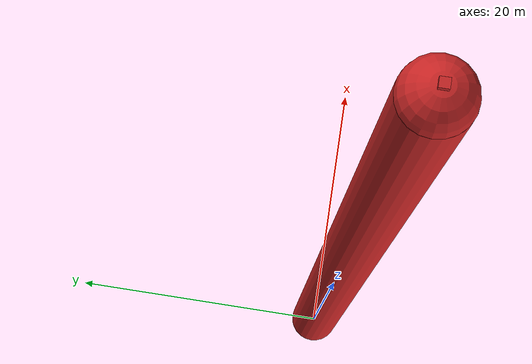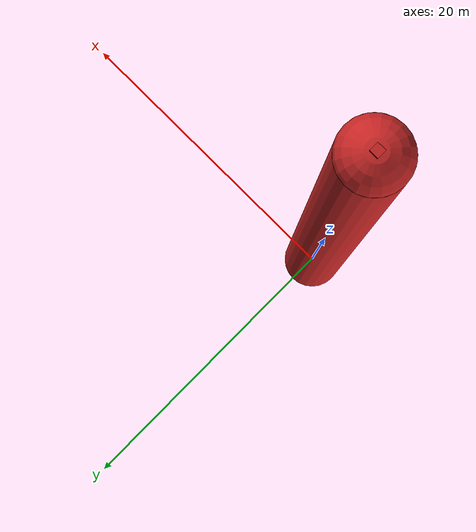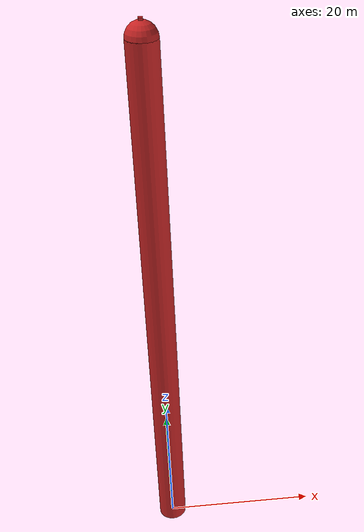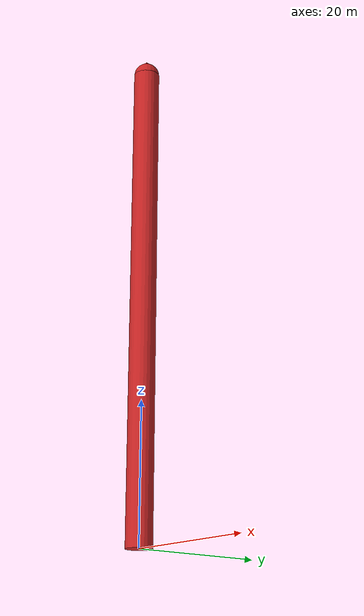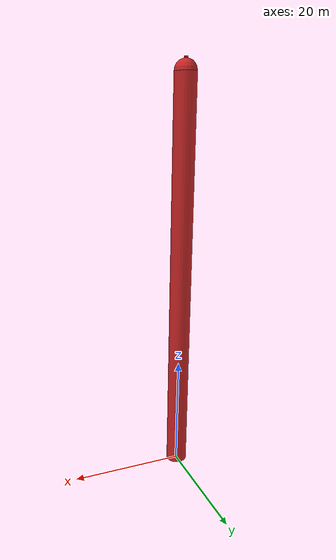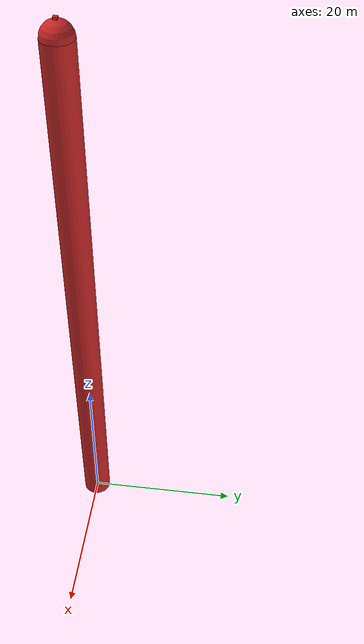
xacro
<?xml version="1.0"?>
<robot name="rocket/rocket">
  <material name="Red">
      <color rgba="0.8 0.0 0.0 1.0"/>
    </material>

  <macro name="cylinder_inertia" params="m r h">
    <inertia  ixx="${m*(3*r*r+h*h)/12}" ixy = "0.00001" ixz = "0.00001"
              iyy="${m*(3*r*r+h*h)/12}" iyz = "0.00001"
              izz="${m*r*r/2}" />
  </macro>

  <macro name="sphere_inertia" params="m r">
    <inertia  ixx="${2*m*r*r/5}" ixy = "0.00001" ixz = "0.00001"
              iyy="${2*m*r*r/5}" iyz = "0.00001"
              izz="${2*m*r*r/5}" />
  </macro>

  <link name="body">
    <inertial>
      <mass value="549054"/>
      <origin xyz="0.00001 0.00001 35"/>
      <cylinder_inertia  m="549054" r="1.85" h="70" />
    </inertial>
    <visual>
      <origin rpy="0 0 0" xyz="0 0 35"/>
      <geometry>
        <cylinder length="70" radius="1.85"/>
      </geometry>
    </visual>
    <collision>
      <origin rpy="0 0 0" xyz="0 0 35"/>
      <geometry>
        <cylinder length="70" radius="1.85"/>
      </geometry>
    </collision>
  </link>

    <gazebo reference="body">
      <material>Gazebo/Red</material>
      <turnGravityOff>false</turnGravityOff>
    </gazebo>

  <link name="s_body">
    <inertial>
      <mass value="4000"/>
      <origin xyz="0.00001 0.00001 70"/>
      <sphere_inertia m = "4000" r = "1.85" />
    </inertial>
    <collision>
      <origin rpy="0 0 0" xyz="0 0 70"/>
      <geometry>
        <sphere radius="1.85"/>
      </geometry>
    </collision>
    <visual>
      <origin rpy="0 0 0" xyz="0 0 70"/>
      <geometry>
        <sphere radius="1.85"/>
      </geometry>
    </visual>
  </link>

  <gazebo reference="s_body">
      <material>Gazebo/Red</material>
      <turnGravityOff>false</turnGravityOff>
    </gazebo>

  <joint name="joint_body_s_body" type="fixed">
    <origin rpy="0 0 0" xyz="0 0 0"/>
    <parent link="body"/>
    <child link="s_body"/>
  </joint>

 <link name="base">
    <inertial>
      <mass value="0.000001"/>
      <origin xyz="0.00001 0.00001 0.00005"/>
      <cylinder_inertia  m="1" r="1.85" h="0.0001" />
    </inertial>
    <visual>
      <origin rpy="0 0 0" xyz="0 0 0.00005"/>
      <geometry>
        <cylinder length="0.0001" radius="1.85"/>
      </geometry>
    </visual>
    <collision>
      <origin rpy="0 0 0" xyz="0 0 0.00005"/>
      <geometry>
        <cylinder length="0.0001" radius="1.85"/>
      </geometry>
    </collision>
  </link>

   <gazebo reference="base">
      <material>Gazebo/Blue</material>
      <turnGravityOff>false</turnGravityOff>
    </gazebo>

  <joint name="joint_body_base" type="fixed">
    <origin rpy="0 0 0" xyz="0 0 0"/>
    <parent link="body"/>
    <child link="base"/>
  </joint>

  <property name="camera_link_size" value="0.5" />
  <property name="PI" value="3.1415926535897931" />

  <link name="camera_adj">
  </link>

  <joint name="camera_optical_joint" type="fixed">
        <origin xyz="0 -35.925 35.925" rpy="0.0 ${-PI/2} ${-PI/2}" />
        <parent link="camera_adj" />
        <child link="camera_link"/>
  </joint>

  <joint name="camera_joint" type="fixed">
    <origin xyz="0 0 35.925" rpy="0 0 0"/>
    <parent link="s_body"/>
    <child link="camera_adj"/>
  </joint>

  <link name="camera_link">
    <collision>
      <origin xyz="0 0 35.925" rpy="0 0 0"/>
      <geometry>
    <box size="${camera_link_size} ${camera_link_size} ${camera_link_size}"/>
      </geometry>
    </collision>

    <visual>
      <origin xyz="0 0 35.925" rpy="0 0 0"/>
      <geometry>
    <box size="${camera_link_size} ${camera_link_size} ${camera_link_size}"/>
      </geometry>
      <material name="red"/>
    </visual>

    <inertial>
      <mass value="1e-5" />
      <origin xyz="0 0 0" rpy="0 0 0"/>
      <inertia ixx="1e-6" ixy="0" ixz="0" iyy="1e-6" iyz="0" izz="1e-6" />
    </inertial>

  </link>

  <gazebo reference="camera_link">
    <material>Gazebo/Blue</material>
    <turnGravityOff>false</turnGravityOff>
  </gazebo>

   <gazebo reference="camera_link">
    <sensor type="camera" name="camera1">
      <update_rate>30.0</update_rate>
      <camera name="camera1">
        <horizontal_fov>1.3962634</horizontal_fov>
        <image>
          <width>800</width>
          <height>800</height>
          <format>R8G8B8</format>
        </image>
        <clip>
          <near>0.02</near>
          <far>300</far>
        </clip>
        <noise>
          <type>gaussian</type>
          <!-- Noise is sampled independently per pixel on each frame.
               That pixel's noise value is added to each of its color
               channels, which at that point lie in the range [0,1]. -->
          <mean>0.0</mean>
          <stddev>0.007</stddev>
        </noise>
      </camera>

      <plugin name="camera_controller" filename="libgazebo_ros_camera.so">
        <alwaysOn>true</alwaysOn>
        <updateRate>10.0</updateRate>
        <cameraName>camera1</cameraName>
        <imageTopicName>image_raw</imageTopicName>
        <cameraInfoTopicName>camera_info</cameraInfoTopicName>
        <frameName>camera_link</frameName>
        <hackBaseline>1.57</hackBaseline>
        <distortionK1>0.0</distortionK1>
        <distortionK2>0.0</distortionK2>
        <distortionK3>0.0</distortionK3>
        <distortionT1>0.0</distortionT1>
        <distortionT2>0.0</distortionT2>
      </plugin>
    </sensor>
  </gazebo>

  <gazebo>
    <plugin name="body_lift" filename="libLiftDragPlugin.so">

      <!-- taken from the lift curve figure -->
      <!-- alpha_0 is 5 degrees -->
      <a0>0.08727</a0>
      <!-- alpha_stall is 19.3 degrees -->
      <alpha_stall>0.3368</alpha_stall>
      <!-- slope of the lift curve to the left of the stall angle -->
      <cla>5.418</cla>
      <!-- slope of the lift curve to the right of the stall angle -->
      <cla_stall>-2.1419</cla_stall>

      <cda>0.0001</cda>
      <cda_stall>0.0001</cda_stall>
      <cma>0.0001</cma>
      <cma_stall>0.0001</cma_stall>
      <area>2.969</area>
      <fluid_density>1.225</fluid_density>
      <forward>1 0.001 0.001</forward>
      <upward>-1 0.001 1</upward>
      <cp>0.001 0.001 1.5</cp>
      <link_name>body</link_name>
      <radial_symmetry>true</radial_symmetry>
    </plugin>
  </gazebo>

  <gazebo>
      <plugin name="gazebo_base_force" filename="librocket_engine_plugins.so">
        <alwaysOn>true</alwaysOn>
        <update>100</update>
        <updateRate>100.0</updateRate>
        <bodyName>base</bodyName>
        <topicName>engine_force</topicName>
      </plugin>
    </gazebo>

</robot>
